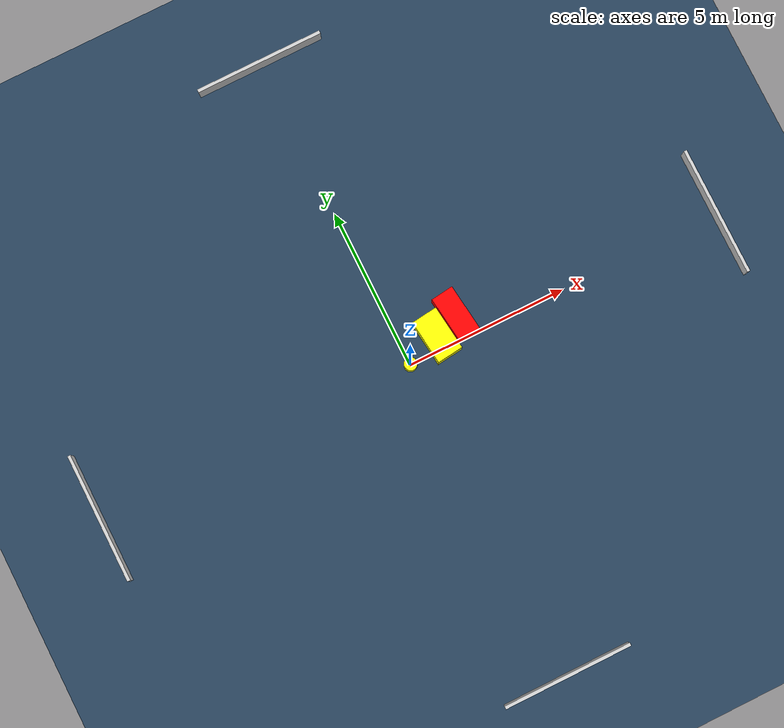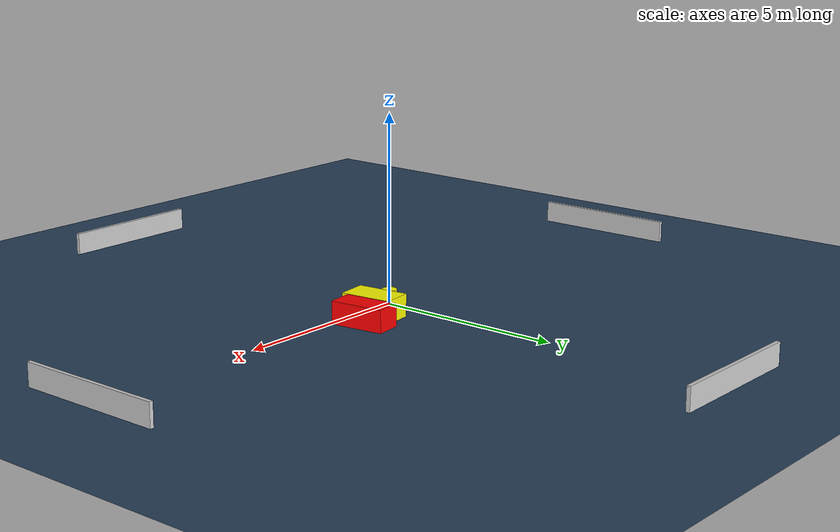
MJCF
<?xml version="1.0" ?>
<mujoco model="generated_environment">
  <option timestep="0.01" integrator="RK4" cone="elliptic"/>
  <default>
    <geom density="1"/>
  </default>
  <asset>
    <texture builtin="gradient" height="3072" name="skybox" rgb1="0.3 0.5 0.7" rgb2="0 0 0" type="skybox" width="512"/>
    <texture builtin="checker" height="300" name="groundplane" rgb1="0.2 0.3 0.4" rgb2="0.1 0.2 0.3" type="2d" width="300"/>
    <material name="groundplane" reflectance="0.2" texrepeat="5 5" texture="groundplane"/>
  </asset>
  <worldbody>
    <light dir="0 0 -1" directional="true" pos="0 0 1.5"/>
    <geom condim="3" friction="0.5 0.005 0.001" material="groundplane" name="floor" pos="0 0 0" size="0 0 0.05" type="plane"/>
    <body name="walls">
      <geom name="wall_1" condim="4" pos="-10.0 0.0 0.3" rgba="0.800000011920929 0.800000011920929 0.800000011920929 1.0" size="0.05 2.0 0.3" type="box"/>
      <geom name="wall_2" condim="4" pos="10.0 0.0 0.3" rgba="0.800000011920929 0.800000011920929 0.800000011920929 1.0" size="0.05 2.0 0.3" type="box"/>
      <geom name="wall_3" condim="4" pos="0.0 -10.0 0.3" rgba="0.800000011920929 0.800000011920929 0.800000011920929 1.0" size="2.0 0.05 0.3" type="box"/>
      <geom name="wall_4" condim="4" pos="0.0 10.0 0.3" rgba="0.800000011920929 0.800000011920929 0.800000011920929 1.0" size="2.0 0.05 0.3" type="box"/>
    </body>
    <body name="robot">
      <joint name="joint_x" type="slide" pos="0 0 0" axis="1 0 0"/>
      <joint name="joint_y" type="slide" pos="0 0 0" axis="0 1 0"/>
      <geom name="robot" type="cylinder" pos="0.0 0.0 0.2" size="0.2 0.2 0.0" mass="5.0" friction="1.0 0.005 0.0001" condim="4" rgba="1.0 1.0 0.0 1.0"/>
    </body>
    <body name="obstacle_1_movable">
      <geom name="obstacle_1_movable" condim="4" pos="1.0563176817931634 0.3881332977488082 0.3" euler="0 0 276.7330661064204" friction="0.0 0.005 0.001" rgba="1.0 1.0 0.0 1.0" size="0.6952764178479542 0.40929851830677255 0.3" type="box" mass="0.1"/>
      <joint type="free"/>
    </body>
    <body name="obstacle_2_static">
      <geom name="obstacle_2_static" condim="4" pos="1.8157053718248968 0.7014280565217338 0.3" euler="0 0 187.03483385364993" friction="0.0 0.005 0.001" rgba="1.0 0.0 0.0 1.0" size="0.3503339979973994 0.7283859876446928 0.3" type="box"/>
    </body>
  </worldbody>
  <actuator>
    <motor name="actuator_x" joint="joint_x" gear="1" ctrlrange="-1 1"/>
    <motor name="actuator_y" joint="joint_y" gear="1" ctrlrange="-1 1"/>
  </actuator>
</mujoco>
